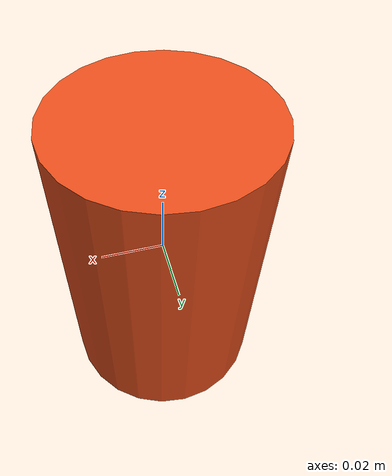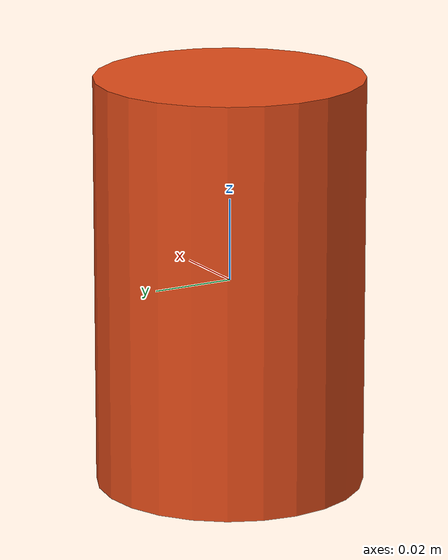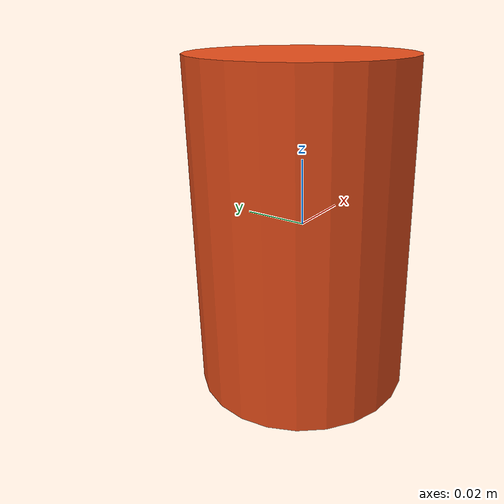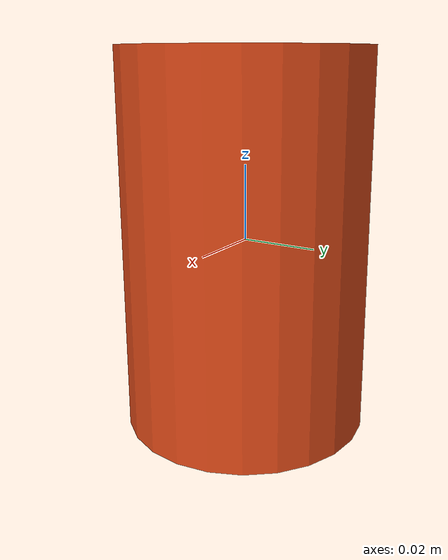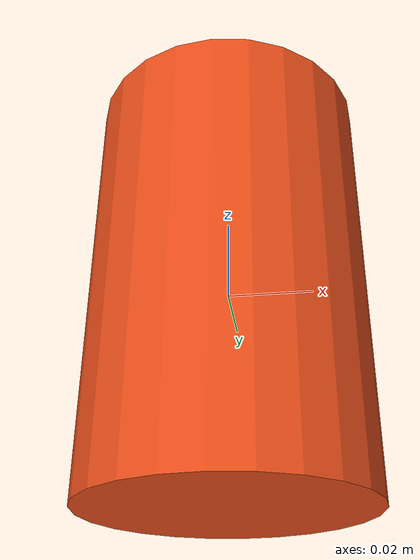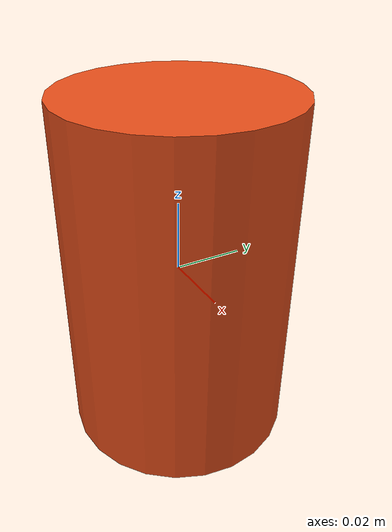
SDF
<?xml version="1.0" ?>
<!-- Cilindro solido. Diametro 65 mm (radio 0.0325 m) x altura 100 mm.
     Masa 50 g. Friccion mu=mu2=1.2. Eje vertical (de pie).
     Inercia: Izz=2.6406e-05  Ixx=Iyy=5.4870e-05 -->
<sdf version="1.10">
  <model name="cilindro_65">
    <pose>0 0 0 0 0 0</pose>
    <link name="link">
      <inertial>
        <mass>0.05</mass>
        <inertia><ixx>5.4870e-05</ixx><iyy>5.4870e-05</iyy><izz>2.6406e-05</izz>
          <ixy>0</ixy><ixz>0</ixz><iyz>0</iyz></inertia>
      </inertial>
      <collision name="collision">
        <geometry><cylinder><radius>0.0325</radius><length>0.1</length></cylinder></geometry>
        <surface>
          <friction><ode><mu>1.2</mu><mu2>1.2</mu2></ode></friction>
          <contact><ode><kp>1e6</kp><kd>1e2</kd></ode></contact>
        </surface>
      </collision>
      <visual name="visual">
        <geometry><cylinder><radius>0.0325</radius><length>0.1</length></cylinder></geometry>
        <material><ambient>0.9 0.3 0.1 1</ambient><diffuse>0.9 0.3 0.1 1</diffuse></material>
      </visual>
    </link>
  </model>
</sdf>
